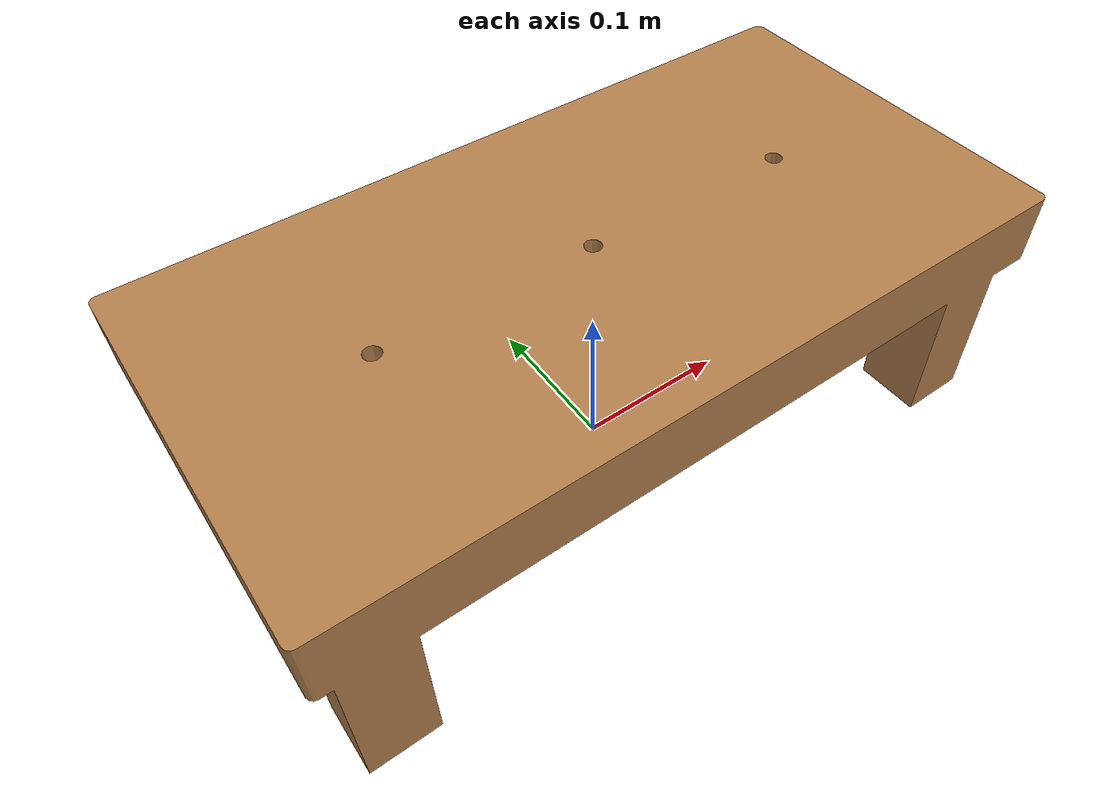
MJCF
<?xml version="1.0" encoding="utf-8"?>
<mujoco model="wood_shelf">
  <asset>
    <mesh file="meshes/wood_shelf.stl" name="wood_shelf_mesh" scale="1500 1500 1500"/>
    <texture file="../textures/dark-wood.png" name="tex-dark-wood"/>
    <material name="dark_wood" reflectance="0.3" texrepeat="3 3"
              texture="tex-dark-wood" texuniform="true"/>
  </asset>
  <worldbody>
    <body>
      <body name="object">
        <!-- group=1 视觉 geom：渲染纹理，无碰撞 -->
        <geom mesh="wood_shelf_mesh" type="mesh"
              conaffinity="0" contype="0"
              group="1" material="dark_wood"/>
        <!-- group=0 碰撞 geom：参与物理，透明 -->
        <geom mesh="wood_shelf_mesh" type="mesh"
              solimp="0.998 0.998 0.001" solref="0.001 1"
              density="500" friction="0.95 0.3 0.1"
              condim="4" group="0" rgba="0.7 0.5 0.3 0.0"/>
      </body>
      <site rgba="0 0 0 0" size="0.005" pos="0 0 0.001"       name="bottom_site"/>
      <site rgba="0 0 0 0" size="0.005" pos="0 0 0.1589"     name="top_site"/>
      <site rgba="0 0 0 0" size="0.005" pos="0.2363 0 0.0795" name="horizontal_radius_site"/>
    </body>
  </worldbody>
</mujoco>
